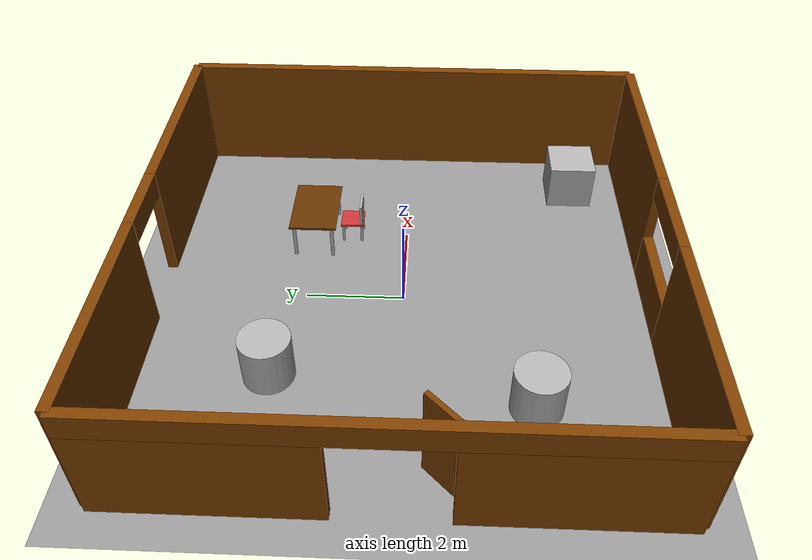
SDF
<?xml version='1.0' encoding='us-ascii'?>
<sdf version="1.10">
  <world name="my_world">
    <physics name="1ms" type="ignored">
      <max_step_size>0.001</max_step_size>
      <real_time_factor>1</real_time_factor>
      <real_time_update_rate>1000</real_time_update_rate>
    </physics>
    <plugin name="gz::sim::systems::Physics" filename="gz-sim-physics-system" />
    <plugin name="gz::sim::systems::UserCommands" filename="gz-sim-user-commands-system" />
    <plugin name="gz::sim::systems::SceneBroadcaster" filename="gz-sim-scene-broadcaster-system" />
    <plugin name="gz::sim::systems::Contact" filename="gz-sim-contact-system" />
    <scene>
      <ambient>1 1 1 1</ambient>
      <background>0.5 0.800000012 0.899999976 1</background>
      <shadows>false</shadows>
    </scene>
    <gravity>0 0 -9.8000000000000007</gravity>
    <magnetic_field>5.5644999999999998e-06 2.2875799999999999e-05 -4.2388400000000002e-05</magnetic_field>
    <atmosphere type="adiabatic" />
    <model name="ground_plane">
      <static>true</static>
      <link name="link">
        <collision name="collision">
          <geometry>
            <plane>
              <normal>0 0 1</normal>
              <size>100 100</size>
            </plane>
          </geometry>
          <surface>
            <friction>
              <ode />
            </friction>
            <bounce />
            <contact />
          </surface>
        </collision>
        <visual name="visual">
          <geometry>
            <plane>
              <normal>0 0 1</normal>
              <size>100 100</size>
            </plane>
          </geometry>
          <material>
            <ambient>0.600000024 0.600000024 0.600000024 1</ambient>
            <diffuse>0.600000024 0.600000024 0.600000024 1</diffuse>
          </material>
        </visual>
        <pose>0 0 0 0 0 0</pose>
        <inertial>
          <pose>0 0 0 0 0 0</pose>
          <mass>1</mass>
          <inertia>
            <ixx>1</ixx>
            <ixy>0</ixy>
            <ixz>0</ixz>
            <iyy>1</iyy>
            <iyz>0</iyz>
            <izz>1</izz>
          </inertia>
        </inertial>
        <enable_wind>false</enable_wind>
      </link>
      <pose>0 0 0 0 0 0</pose>
      <self_collide>false</self_collide>
    </model>
    <model name="wall_south">
      <static>true</static>
      <pose>0 0 0 0 0 0</pose>
      <self_collide>false</self_collide>
    <link name="left_wall"><pose>-3 -5 1.25 0 0 0</pose><collision name="col"><geometry><box><size>4 0.2 2.5</size></box></geometry></collision><visual name="vis"><geometry><box><size>4 0.2 2.5</size></box></geometry><material><ambient>0.5 0.25 0 1</ambient><diffuse>0.5 0.25 0 1</diffuse></material></visual></link><link name="right_wall"><pose>3 -5 1.25 0 0 0</pose><collision name="col"><geometry><box><size>4 0.2 2.5</size></box></geometry></collision><visual name="vis"><geometry><box><size>4 0.2 2.5</size></box></geometry><material><ambient>0.5 0.25 0 1</ambient><diffuse>0.5 0.25 0 1</diffuse></material></visual></link><link name="bottom_wall"><pose>0 -5 0.5 0 0 0</pose><collision name="col"><geometry><box><size>2 0.2 1</size></box></geometry></collision><visual name="vis"><geometry><box><size>2 0.2 1</size></box></geometry><material><ambient>0.5 0.25 0 1</ambient><diffuse>0.5 0.25 0 1</diffuse></material></visual></link><link name="top_wall"><pose>0 -5 2.25 0 0 0</pose><collision name="col"><geometry><box><size>2 0.2 0.5</size></box></geometry></collision><visual name="vis"><geometry><box><size>2 0.2 0.5</size></box></geometry><material><ambient>0.5 0.25 0 1</ambient><diffuse>0.5 0.25 0 1</diffuse></material></visual></link></model>
    <model name="wall_east">
      <static>true</static>
      <pose>5 0 1.25 0 0 0</pose>
      <link name="link">
        <collision name="collision">
          <geometry>
            <box>
              <size>0.20000000000000001 10 2.5</size>
            </box>
          </geometry>
          <surface>
            <friction>
              <ode />
            </friction>
            <bounce />
            <contact />
          </surface>
        </collision>
        <visual name="visual">
          <geometry>
            <box>
              <size>0.20000000000000001 10 2.5</size>
            </box>
          </geometry>
          <material>
            <ambient>0.5 0.25 0 1</ambient>
            <diffuse>0.5 0.25 0 1</diffuse>
          </material>
        </visual>
        <pose>0 0 0 0 0 0</pose>
        <inertial>
          <pose>0 0 0 0 0 0</pose>
          <mass>1</mass>
          <inertia>
            <ixx>1</ixx>
            <ixy>0</ixy>
            <ixz>0</ixz>
            <iyy>1</iyy>
            <iyz>0</iyz>
            <izz>1</izz>
          </inertia>
        </inertial>
        <enable_wind>false</enable_wind>
      </link>
      <self_collide>false</self_collide>
    </model>
    <model name="wall_north_window">
      <static>true</static>
      <pose>0 0 0 0 0 0</pose>
      <self_collide>false</self_collide>
    <link name="left_wall"><pose>-2.875 5 1.25 0 0 0</pose><collision name="col"><geometry><box><size>4.25 0.2 2.5</size></box></geometry></collision><visual name="vis"><geometry><box><size>4.25 0.2 2.5</size></box></geometry><material><ambient>0.5 0.25 0 1</ambient><diffuse>0.5 0.25 0 1</diffuse></material></visual></link><link name="right_wall"><pose>2.875 5 1.25 0 0 0</pose><collision name="col"><geometry><box><size>4.25 0.2 2.5</size></box></geometry></collision><visual name="vis"><geometry><box><size>4.25 0.2 2.5</size></box></geometry><material><ambient>0.5 0.25 0 1</ambient><diffuse>0.5 0.25 0 1</diffuse></material></visual></link><link name="top_wall"><pose>0 5 2.25 0 0 0</pose><collision name="col"><geometry><box><size>1.5 0.2 0.5</size></box></geometry></collision><visual name="vis"><geometry><box><size>1.5 0.2 0.5</size></box></geometry><material><ambient>0.5 0.25 0 1</ambient><diffuse>0.5 0.25 0 1</diffuse></material></visual></link></model>
    <model name="wall_west_door">
      <static>true</static>
      <link name="top_wall">
        <pose>-5 0 2.25 0 0 0</pose>
        <collision name="col">
          <geometry>
            <box>
              <size>0.20000000000000001 10 0.5</size>
            </box>
          </geometry>
          <surface>
            <friction>
              <ode />
            </friction>
            <bounce />
            <contact />
          </surface>
        </collision>
        <visual name="vis">
          <geometry>
            <box>
              <size>0.20000000000000001 10 0.5</size>
            </box>
          </geometry>
          <material>
            <ambient>0.5 0.25 0 1</ambient>
            <diffuse>0.5 0.25 0 1</diffuse>
          </material>
        </visual>
        <inertial>
          <pose>0 0 0 0 0 0</pose>
          <mass>1</mass>
          <inertia>
            <ixx>1</ixx>
            <ixy>0</ixy>
            <ixz>0</ixz>
            <iyy>1</iyy>
            <iyz>0</iyz>
            <izz>1</izz>
          </inertia>
        </inertial>
        <enable_wind>false</enable_wind>
      </link>
      <link name="left_wall">
        <pose>-5 -3 1 0 0 0</pose>
        <collision name="col">
          <geometry>
            <box>
              <size>0.20000000000000001 4 2</size>
            </box>
          </geometry>
          <surface>
            <friction>
              <ode />
            </friction>
            <bounce />
            <contact />
          </surface>
        </collision>
        <visual name="vis">
          <geometry>
            <box>
              <size>0.20000000000000001 4 2</size>
            </box>
          </geometry>
          <material>
            <ambient>0.5 0.25 0 1</ambient>
            <diffuse>0.5 0.25 0 1</diffuse>
          </material>
        </visual>
        <inertial>
          <pose>0 0 0 0 0 0</pose>
          <mass>1</mass>
          <inertia>
            <ixx>1</ixx>
            <ixy>0</ixy>
            <ixz>0</ixz>
            <iyy>1</iyy>
            <iyz>0</iyz>
            <izz>1</izz>
          </inertia>
        </inertial>
        <enable_wind>false</enable_wind>
      </link>
      <link name="right_wall">
        <pose>-5 3 1 0 0 0</pose>
        <collision name="col">
          <geometry>
            <box>
              <size>0.20000000000000001 4 2</size>
            </box>
          </geometry>
          <surface>
            <friction>
              <ode />
            </friction>
            <bounce />
            <contact />
          </surface>
        </collision>
        <visual name="vis">
          <geometry>
            <box>
              <size>0.20000000000000001 4 2</size>
            </box>
          </geometry>
          <material>
            <ambient>0.5 0.25 0 1</ambient>
            <diffuse>0.5 0.25 0 1</diffuse>
          </material>
        </visual>
        <inertial>
          <pose>0 0 0 0 0 0</pose>
          <mass>1</mass>
          <inertia>
            <ixx>1</ixx>
            <ixy>0</ixy>
            <ixz>0</ixz>
            <iyy>1</iyy>
            <iyz>0</iyz>
            <izz>1</izz>
          </inertia>
        </inertial>
        <enable_wind>false</enable_wind>
      </link>
      <link name="door">
        <pose>-4.5 -1 1 0 0 0.78500000000000048</pose>
        <collision name="col">
          <geometry>
            <box>
              <size>1.3999999999999999 0.10000000000000001 2</size>
            </box>
          </geometry>
          <surface>
            <friction>
              <ode />
            </friction>
            <bounce />
            <contact />
          </surface>
        </collision>
        <visual name="vis">
          <geometry>
            <box>
              <size>1.3999999999999999 0.10000000000000001 2</size>
            </box>
          </geometry>
          <material>
            <ambient>0.5 0.25 0 1</ambient>
            <diffuse>0.5 0.25 0 1</diffuse>
          </material>
        </visual>
        <inertial>
          <pose>0 0 0 0 0 0</pose>
          <mass>1</mass>
          <inertia>
            <ixx>1</ixx>
            <ixy>0</ixy>
            <ixz>0</ixz>
            <iyy>1</iyy>
            <iyz>0</iyz>
            <izz>1</izz>
          </inertia>
        </inertial>
        <enable_wind>false</enable_wind>
      </link>
      <pose>0 0 0 0 0 0</pose>
      <self_collide>false</self_collide>
    </model>
    <model name="table">
      <static>true</static>
      <link name="table_top">
        <pose>2 2 0.75 0 0 0</pose>
        <collision name="col">
          <geometry>
            <box>
              <size>1.5 1 0.050000000000000003</size>
            </box>
          </geometry>
          <surface>
            <friction>
              <ode />
            </friction>
            <bounce />
            <contact />
          </surface>
        </collision>
        <visual name="vis">
          <geometry>
            <box>
              <size>1.5 1 0.050000000000000003</size>
            </box>
          </geometry>
          <material>
            <ambient>0.400000006 0.200000003 0 1</ambient>
            <diffuse>0.400000006 0.200000003 0 1</diffuse>
          </material>
        </visual>
        <inertial>
          <pose>0 0 0 0 0 0</pose>
          <mass>1</mass>
          <inertia>
            <ixx>1</ixx>
            <ixy>0</ixy>
            <ixz>0</ixz>
            <iyy>1</iyy>
            <iyz>0</iyz>
            <izz>1</izz>
          </inertia>
        </inertial>
        <enable_wind>false</enable_wind>
      </link>
      <link name="leg1">
        <pose>1.3 1.6000000000000001 0.375 0 0 0</pose>
        <collision name="col">
          <geometry>
            <cylinder>
              <radius>0.040000000000000001</radius>
              <length>0.75</length>
            </cylinder>
          </geometry>
          <surface>
            <friction>
              <ode />
            </friction>
            <bounce />
            <contact />
          </surface>
        </collision>
        <visual name="vis">
          <geometry>
            <cylinder>
              <radius>0.040000000000000001</radius>
              <length>0.75</length>
            </cylinder>
          </geometry>
        </visual>
        <inertial>
          <pose>0 0 0 0 0 0</pose>
          <mass>1</mass>
          <inertia>
            <ixx>1</ixx>
            <ixy>0</ixy>
            <ixz>0</ixz>
            <iyy>1</iyy>
            <iyz>0</iyz>
            <izz>1</izz>
          </inertia>
        </inertial>
        <enable_wind>false</enable_wind>
      </link>
      <link name="leg2">
        <pose>2.7000000000000002 1.6000000000000001 0.375 0 0 0</pose>
        <collision name="col">
          <geometry>
            <cylinder>
              <radius>0.040000000000000001</radius>
              <length>0.75</length>
            </cylinder>
          </geometry>
          <surface>
            <friction>
              <ode />
            </friction>
            <bounce />
            <contact />
          </surface>
        </collision>
        <visual name="vis">
          <geometry>
            <cylinder>
              <radius>0.040000000000000001</radius>
              <length>0.75</length>
            </cylinder>
          </geometry>
        </visual>
        <inertial>
          <pose>0 0 0 0 0 0</pose>
          <mass>1</mass>
          <inertia>
            <ixx>1</ixx>
            <ixy>0</ixy>
            <ixz>0</ixz>
            <iyy>1</iyy>
            <iyz>0</iyz>
            <izz>1</izz>
          </inertia>
        </inertial>
        <enable_wind>false</enable_wind>
      </link>
      <link name="leg3">
        <pose>1.3 2.3999999999999999 0.375 0 0 0</pose>
        <collision name="col">
          <geometry>
            <cylinder>
              <radius>0.040000000000000001</radius>
              <length>0.75</length>
            </cylinder>
          </geometry>
          <surface>
            <friction>
              <ode />
            </friction>
            <bounce />
            <contact />
          </surface>
        </collision>
        <visual name="vis">
          <geometry>
            <cylinder>
              <radius>0.040000000000000001</radius>
              <length>0.75</length>
            </cylinder>
          </geometry>
        </visual>
        <inertial>
          <pose>0 0 0 0 0 0</pose>
          <mass>1</mass>
          <inertia>
            <ixx>1</ixx>
            <ixy>0</ixy>
            <ixz>0</ixz>
            <iyy>1</iyy>
            <iyz>0</iyz>
            <izz>1</izz>
          </inertia>
        </inertial>
        <enable_wind>false</enable_wind>
      </link>
      <link name="leg4">
        <pose>2.7000000000000002 2.3999999999999999 0.375 0 0 0</pose>
        <collision name="col">
          <geometry>
            <cylinder>
              <radius>0.040000000000000001</radius>
              <length>0.75</length>
            </cylinder>
          </geometry>
          <surface>
            <friction>
              <ode />
            </friction>
            <bounce />
            <contact />
          </surface>
        </collision>
        <visual name="vis">
          <geometry>
            <cylinder>
              <radius>0.040000000000000001</radius>
              <length>0.75</length>
            </cylinder>
          </geometry>
        </visual>
        <inertial>
          <pose>0 0 0 0 0 0</pose>
          <mass>1</mass>
          <inertia>
            <ixx>1</ixx>
            <ixy>0</ixy>
            <ixz>0</ixz>
            <iyy>1</iyy>
            <iyz>0</iyz>
            <izz>1</izz>
          </inertia>
        </inertial>
        <enable_wind>false</enable_wind>
      </link>
      <pose>0 0 0 0 0 0</pose>
      <self_collide>false</self_collide>
    </model>
    <model name="chair">
      <static>true</static>
      <link name="seat">
        <pose>2 1.2 0.45000000000000001 0 0 0</pose>
        <collision name="col">
          <geometry>
            <box>
              <size>0.5 0.5 0.050000000000000003</size>
            </box>
          </geometry>
          <surface>
            <friction>
              <ode />
            </friction>
            <bounce />
            <contact />
          </surface>
        </collision>
        <visual name="vis">
          <geometry>
            <box>
              <size>0.5 0.5 0.050000000000000003</size>
            </box>
          </geometry>
          <material>
            <ambient>0.800000012 0.200000003 0.200000003 1</ambient>
            <diffuse>0.800000012 0.200000003 0.200000003 1</diffuse>
          </material>
        </visual>
        <inertial>
          <pose>0 0 0 0 0 0</pose>
          <mass>1</mass>
          <inertia>
            <ixx>1</ixx>
            <ixy>0</ixy>
            <ixz>0</ixz>
            <iyy>1</iyy>
            <iyz>0</iyz>
            <izz>1</izz>
          </inertia>
        </inertial>
        <enable_wind>false</enable_wind>
      </link>
      <link name="backrest">
        <pose>2 1 0.69999999999999996 0 0 0</pose>
        <collision name="col">
          <geometry>
            <box>
              <size>0.5 0.050000000000000003 0.5</size>
            </box>
          </geometry>
          <surface>
            <friction>
              <ode />
            </friction>
            <bounce />
            <contact />
          </surface>
        </collision>
        <visual name="vis">
          <geometry>
            <box>
              <size>0.5 0.050000000000000003 0.5</size>
            </box>
          </geometry>
        </visual>
        <inertial>
          <pose>0 0 0 0 0 0</pose>
          <mass>1</mass>
          <inertia>
            <ixx>1</ixx>
            <ixy>0</ixy>
            <ixz>0</ixz>
            <iyy>1</iyy>
            <iyz>0</iyz>
            <izz>1</izz>
          </inertia>
        </inertial>
        <enable_wind>false</enable_wind>
      </link>
      <link name="leg1">
        <pose>1.8 1 0.22500000000000001 0 0 0</pose>
        <collision name="col">
          <geometry>
            <cylinder>
              <radius>0.029999999999999999</radius>
              <length>0.45000000000000001</length>
            </cylinder>
          </geometry>
          <surface>
            <friction>
              <ode />
            </friction>
            <bounce />
            <contact />
          </surface>
        </collision>
        <visual name="vis">
          <geometry>
            <cylinder>
              <radius>0.029999999999999999</radius>
              <length>0.45000000000000001</length>
            </cylinder>
          </geometry>
        </visual>
        <inertial>
          <pose>0 0 0 0 0 0</pose>
          <mass>1</mass>
          <inertia>
            <ixx>1</ixx>
            <ixy>0</ixy>
            <ixz>0</ixz>
            <iyy>1</iyy>
            <iyz>0</iyz>
            <izz>1</izz>
          </inertia>
        </inertial>
        <enable_wind>false</enable_wind>
      </link>
      <link name="leg2">
        <pose>2.2000000000000002 1 0.22500000000000001 0 0 0</pose>
        <collision name="col">
          <geometry>
            <cylinder>
              <radius>0.029999999999999999</radius>
              <length>0.45000000000000001</length>
            </cylinder>
          </geometry>
          <surface>
            <friction>
              <ode />
            </friction>
            <bounce />
            <contact />
          </surface>
        </collision>
        <visual name="vis">
          <geometry>
            <cylinder>
              <radius>0.029999999999999999</radius>
              <length>0.45000000000000001</length>
            </cylinder>
          </geometry>
        </visual>
        <inertial>
          <pose>0 0 0 0 0 0</pose>
          <mass>1</mass>
          <inertia>
            <ixx>1</ixx>
            <ixy>0</ixy>
            <ixz>0</ixz>
            <iyy>1</iyy>
            <iyz>0</iyz>
            <izz>1</izz>
          </inertia>
        </inertial>
        <enable_wind>false</enable_wind>
      </link>
      <link name="leg3">
        <pose>1.8 1.3999999999999999 0.22500000000000001 0 0 0</pose>
        <collision name="col">
          <geometry>
            <cylinder>
              <radius>0.029999999999999999</radius>
              <length>0.45000000000000001</length>
            </cylinder>
          </geometry>
          <surface>
            <friction>
              <ode />
            </friction>
            <bounce />
            <contact />
          </surface>
        </collision>
        <visual name="vis">
          <geometry>
            <cylinder>
              <radius>0.029999999999999999</radius>
              <length>0.45000000000000001</length>
            </cylinder>
          </geometry>
        </visual>
        <inertial>
          <pose>0 0 0 0 0 0</pose>
          <mass>1</mass>
          <inertia>
            <ixx>1</ixx>
            <ixy>0</ixy>
            <ixz>0</ixz>
            <iyy>1</iyy>
            <iyz>0</iyz>
            <izz>1</izz>
          </inertia>
        </inertial>
        <enable_wind>false</enable_wind>
      </link>
      <link name="leg4">
        <pose>2.2000000000000002 1.3999999999999999 0.22500000000000001 0 0 0</pose>
        <collision name="col">
          <geometry>
            <cylinder>
              <radius>0.029999999999999999</radius>
              <length>0.45000000000000001</length>
            </cylinder>
          </geometry>
          <surface>
            <friction>
              <ode />
            </friction>
            <bounce />
            <contact />
          </surface>
        </collision>
        <visual name="vis">
          <geometry>
            <cylinder>
              <radius>0.029999999999999999</radius>
              <length>0.45000000000000001</length>
            </cylinder>
          </geometry>
        </visual>
        <inertial>
          <pose>0 0 0 0 0 0</pose>
          <mass>1</mass>
          <inertia>
            <ixx>1</ixx>
            <ixy>0</ixy>
            <ixz>0</ixz>
            <iyy>1</iyy>
            <iyz>0</iyz>
            <izz>1</izz>
          </inertia>
        </inertial>
        <enable_wind>false</enable_wind>
      </link>
      <pose>0 0 0 0 0 0</pose>
      <self_collide>false</self_collide>
    </model>
    <model name="box">
      <pose>3.7273592793830908 -3.7265108825268358 0.49999999980497606 1.0048033485058014e-21 -2.4640853465547739e-21 -3.9210766489770922e-22</pose>
      <link name="box_link">
        <inertial>
          <inertia>
            <ixx>0.16666</ixx>
            <ixy>0</ixy>
            <ixz>0</ixz>
            <iyy>0.16666</iyy>
            <iyz>0</iyz>
            <izz>0.16666</izz>
          </inertia>
          <mass>1</mass>
          <pose>0 0 0 0 0 0</pose>
        </inertial>
        <collision name="box_collision">
          <geometry>
            <box>
              <size>1 1 1</size>
            </box>
          </geometry>
          <surface>
            <friction>
              <ode />
            </friction>
            <bounce />
            <contact />
          </surface>
        </collision>
        <visual name="box_visual">
          <geometry>
            <box>
              <size>1 1 1</size>
            </box>
          </geometry>
          <material>
            <ambient>0.300000012 0.300000012 0.300000012 1</ambient>
            <diffuse>0.699999988 0.699999988 0.699999988 1</diffuse>
            <specular>1 1 1 1</specular>
          </material>
        </visual>
        <pose>0 0 0 0 0 0</pose>
        <enable_wind>false</enable_wind>
      </link>
      <static>false</static>
      <self_collide>false</self_collide>
    </model>
    <model name="cylinder">
      <pose>-2.1162201882442115 2.4524776084226878 0.49999943207967634 4.3114440489910844e-19 2.6252718446432627e-19 9.9181822158428294e-21</pose>
      <link name="cylinder_link">
        <inertial>
          <inertia>
            <ixx>0.14580000000000001</ixx>
            <ixy>0</ixy>
            <ixz>0</ixz>
            <iyy>0.14580000000000001</iyy>
            <iyz>0</iyz>
            <izz>0.125</izz>
          </inertia>
          <mass>1</mass>
          <pose>0 0 0 0 0 0</pose>
        </inertial>
        <collision name="cylinder_collision">
          <geometry>
            <cylinder>
              <radius>0.5</radius>
              <length>1</length>
            </cylinder>
          </geometry>
          <surface>
            <friction>
              <ode />
            </friction>
            <bounce />
            <contact />
          </surface>
        </collision>
        <visual name="cylinder_visual">
          <geometry>
            <cylinder>
              <radius>0.5</radius>
              <length>1</length>
            </cylinder>
          </geometry>
          <material>
            <ambient>0.300000012 0.300000012 0.300000012 1</ambient>
            <diffuse>0.699999988 0.699999988 0.699999988 1</diffuse>
            <specular>1 1 1 1</specular>
          </material>
        </visual>
        <pose>0 0 0 0 0 0</pose>
        <enable_wind>false</enable_wind>
      </link>
      <static>false</static>
      <self_collide>false</self_collide>
    </model>
    <model name="cylinder_0">
      <pose>-2.7050481072900445 -2.5240424828229782 0.49999943207967634 1.3835695353904031e-19 2.7748569684482979e-19 -7.3013012178658942e-21</pose>
      <link name="cylinder_link">
        <inertial>
          <inertia>
            <ixx>0.14580000000000001</ixx>
            <ixy>0</ixy>
            <ixz>0</ixz>
            <iyy>0.14580000000000001</iyy>
            <iyz>0</iyz>
            <izz>0.125</izz>
          </inertia>
          <mass>1</mass>
          <pose>0 0 0 0 0 0</pose>
        </inertial>
        <collision name="cylinder_collision">
          <geometry>
            <cylinder>
              <radius>0.5</radius>
              <length>1</length>
            </cylinder>
          </geometry>
          <surface>
            <friction>
              <ode />
            </friction>
            <bounce />
            <contact />
          </surface>
        </collision>
        <visual name="cylinder_visual">
          <geometry>
            <cylinder>
              <radius>0.5</radius>
              <length>1</length>
            </cylinder>
          </geometry>
          <material>
            <ambient>0.300000012 0.300000012 0.300000012 1</ambient>
            <diffuse>0.699999988 0.699999988 0.699999988 1</diffuse>
            <specular>1 1 1 1</specular>
          </material>
        </visual>
        <pose>0 0 0 0 0 0</pose>
        <enable_wind>false</enable_wind>
      </link>
      <static>false</static>
      <self_collide>false</self_collide>
    </model>

    <light name="sun" type="directional">
      <pose>0 0 10 0 0 0</pose>
      <cast_shadows>true</cast_shadows>
      <intensity>1</intensity>
      <direction>-0.5 0.10000000000000001 -0.90000000000000002</direction>
      <diffuse>0.800000012 0.800000012 0.800000012 1</diffuse>
      <specular>0.200000003 0.200000003 0.200000003 1</specular>
      <attenuation>
        <range>1000</range>
        <linear>0.01</linear>
        <constant>0.90000000000000002</constant>
        <quadratic>0.001</quadratic>
      </attenuation>
      <spot>
        <inner_angle>0</inner_angle>
        <outer_angle>0</outer_angle>
        <falloff>0</falloff>
      </spot>
    </light>
  </world>
</sdf>
